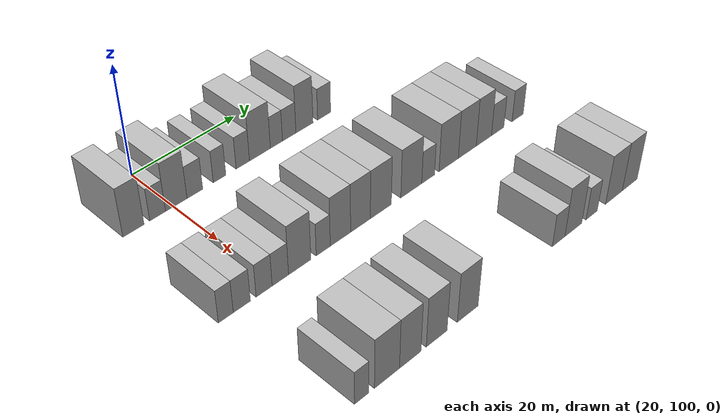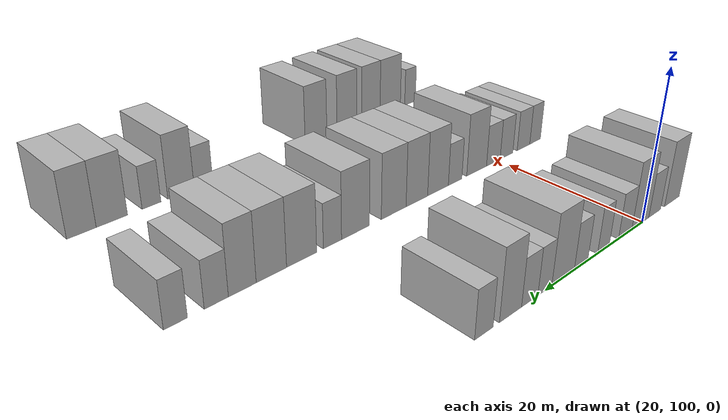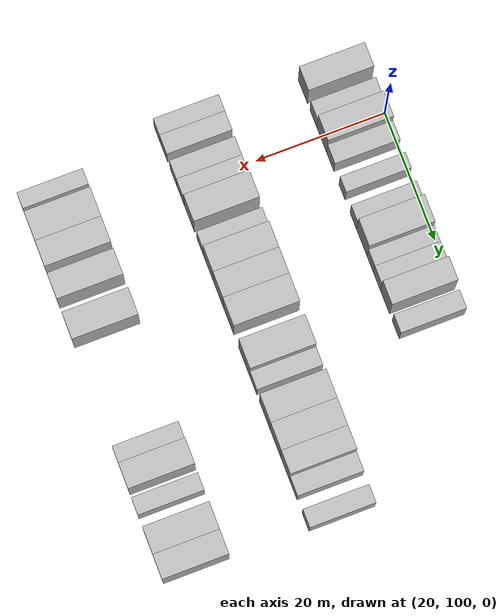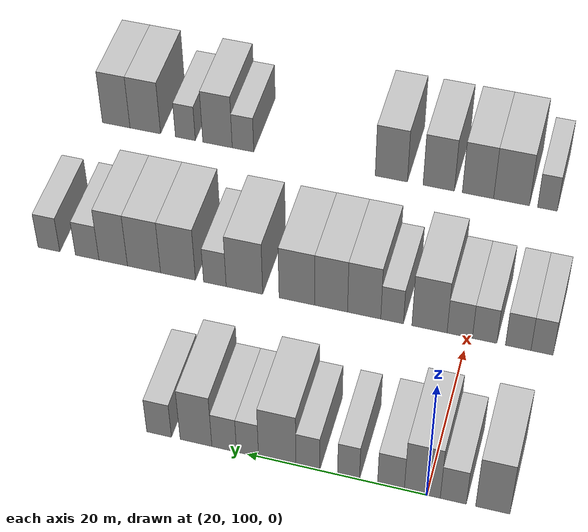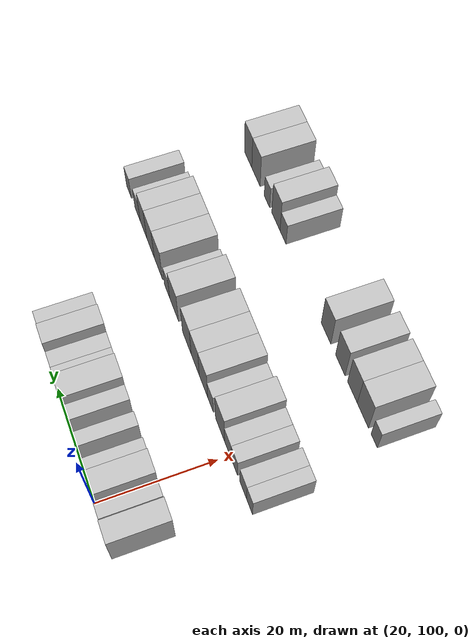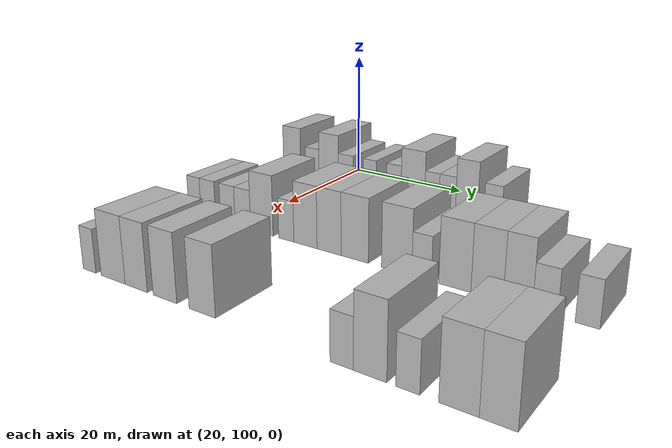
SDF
<sdf version="1.6">
 <world name="default">
  <model name="building_89">
   <static>1</static>
   <pose>25.0000 92.8309 0 0.000000 0.000000 0.000000</pose>
   <link name="link">
    <pose>0 0 4.50 0 0 0</pose>
    <collision name="collision"><geometry><box><size>10.0000 3.7143 9.0000</size></box></geometry></collision>
    <visual name="visual">
     <cast_shadows>0</cast_shadows>
     <geometry><box><size>10.0000 3.7143 9.0000</size></box></geometry>
     <material>
      <script>
       <uri>model://HANNAS_wall/materials/scripts</uri>
       <uri>model://HANNAS_wall/materials/textures</uri>
       <name>vrc/HANNAS_wall</name>
      </script>
     </material>
    </visual>
   </link>
  </model>
  <model name="building_90">
   <static>1</static>
   <pose>25.0000 97.1097 0 0.000000 0.000000 0.000000</pose>
   <link name="link">
    <pose>0 0 3.00 0 0 0</pose>
    <collision name="collision"><geometry><box><size>10.0000 2.8431 6.0000</size></box></geometry></collision>
    <visual name="visual">
     <cast_shadows>0</cast_shadows>
     <geometry><box><size>10.0000 2.8431 6.0000</size></box></geometry>
     <material>
      <script>
       <uri>model://HANNAS_wall/materials/scripts</uri>
       <uri>model://HANNAS_wall/materials/textures</uri>
       <name>vrc/HANNAS_wall</name>
      </script>
     </material>
    </visual>
   </link>
  </model>
  <model name="building_91">
   <static>1</static>
   <pose>25.0000 100.5039 0 0.000000 0.000000 0.000000</pose>
   <link name="link">
    <pose>0 0 4.50 0 0 0</pose>
    <collision name="collision"><geometry><box><size>10.0000 3.9452 9.0000</size></box></geometry></collision>
    <visual name="visual">
     <cast_shadows>0</cast_shadows>
     <geometry><box><size>10.0000 3.9452 9.0000</size></box></geometry>
     <material>
      <script>
       <uri>model://HANNAS_wall/materials/scripts</uri>
       <uri>model://HANNAS_wall/materials/textures</uri>
       <name>vrc/HANNAS_wall</name>
      </script>
     </material>
    </visual>
   </link>
  </model>
  <model name="building_92">
   <static>1</static>
   <pose>25.0000 103.9523 0 0.000000 0.000000 0.000000</pose>
   <link name="link">
    <pose>0 0 3.00 0 0 0</pose>
    <collision name="collision"><geometry><box><size>10.0000 2.9517 6.0000</size></box></geometry></collision>
    <visual name="visual">
     <cast_shadows>0</cast_shadows>
     <geometry><box><size>10.0000 2.9517 6.0000</size></box></geometry>
     <material>
      <script>
       <uri>model://HANNAS_wall/materials/scripts</uri>
       <uri>model://HANNAS_wall/materials/textures</uri>
       <name>vrc/HANNAS_wall</name>
      </script>
     </material>
    </visual>
   </link>
  </model>
  <model name="building_93">
   <static>1</static>
   <pose>25.0000 108.6472 0 0.000000 0.000000 0.000000</pose>
   <link name="link">
    <pose>0 0 3.00 0 0 0</pose>
    <collision name="collision"><geometry><box><size>10.0000 2.4379 6.0000</size></box></geometry></collision>
    <visual name="visual">
     <cast_shadows>0</cast_shadows>
     <geometry><box><size>10.0000 2.4379 6.0000</size></box></geometry>
     <material>
      <script>
       <uri>model://HANNAS_wall/materials/scripts</uri>
       <uri>model://HANNAS_wall/materials/textures</uri>
       <name>vrc/HANNAS_wall</name>
      </script>
     </material>
    </visual>
   </link>
  </model>
  <model name="building_94">
   <static>1</static>
   <pose>25.0000 113.1927 0 0.000000 0.000000 0.000000</pose>
   <link name="link">
    <pose>0 0 3.00 0 0 0</pose>
    <collision name="collision"><geometry><box><size>10.0000 2.6532 6.0000</size></box></geometry></collision>
    <visual name="visual">
     <cast_shadows>0</cast_shadows>
     <geometry><box><size>10.0000 2.6532 6.0000</size></box></geometry>
     <material>
      <script>
       <uri>model://HANNAS_wall/materials/scripts</uri>
       <uri>model://HANNAS_wall/materials/textures</uri>
       <name>vrc/HANNAS_wall</name>
      </script>
     </material>
    </visual>
   </link>
  </model>
  <model name="building_95">
   <static>1</static>
   <pose>25.0000 116.6332 0 0.000000 0.000000 0.000000</pose>
   <link name="link">
    <pose>0 0 4.50 0 0 0</pose>
    <collision name="collision"><geometry><box><size>10.0000 4.2278 9.0000</size></box></geometry></collision>
    <visual name="visual">
     <cast_shadows>0</cast_shadows>
     <geometry><box><size>10.0000 4.2278 9.0000</size></box></geometry>
     <material>
      <script>
       <uri>model://HANNAS_wall/materials/scripts</uri>
       <uri>model://HANNAS_wall/materials/textures</uri>
       <name>vrc/HANNAS_wall</name>
      </script>
     </material>
    </visual>
   </link>
  </model>
  <model name="building_96">
   <static>1</static>
   <pose>25.0000 119.9988 0 0.000000 0.000000 0.000000</pose>
   <link name="link">
    <pose>0 0 3.00 0 0 0</pose>
    <collision name="collision"><geometry><box><size>10.0000 2.5034 6.0000</size></box></geometry></collision>
    <visual name="visual">
     <cast_shadows>0</cast_shadows>
     <geometry><box><size>10.0000 2.5034 6.0000</size></box></geometry>
     <material>
      <script>
       <uri>model://HANNAS_wall/materials/scripts</uri>
       <uri>model://HANNAS_wall/materials/textures</uri>
       <name>vrc/HANNAS_wall</name>
      </script>
     </material>
    </visual>
   </link>
  </model>
  <model name="building_97">
   <static>1</static>
   <pose>25.0000 122.6572 0 0.000000 0.000000 0.000000</pose>
   <link name="link">
    <pose>0 0 3.00 0 0 0</pose>
    <collision name="collision"><geometry><box><size>10.0000 2.8134 6.0000</size></box></geometry></collision>
    <visual name="visual">
     <cast_shadows>0</cast_shadows>
     <geometry><box><size>10.0000 2.8134 6.0000</size></box></geometry>
     <material>
      <script>
       <uri>model://HANNAS_wall/materials/scripts</uri>
       <uri>model://HANNAS_wall/materials/textures</uri>
       <name>vrc/HANNAS_wall</name>
      </script>
     </material>
    </visual>
   </link>
  </model>
  <model name="building_98">
   <static>1</static>
   <pose>25.0000 125.8864 0 0.000000 0.000000 0.000000</pose>
   <link name="link">
    <pose>0 0 4.50 0 0 0</pose>
    <collision name="collision"><geometry><box><size>10.0000 3.6449 9.0000</size></box></geometry></collision>
    <visual name="visual">
     <cast_shadows>0</cast_shadows>
     <geometry><box><size>10.0000 3.6449 9.0000</size></box></geometry>
     <material>
      <script>
       <uri>model://HANNAS_wall/materials/scripts</uri>
       <uri>model://HANNAS_wall/materials/textures</uri>
       <name>vrc/HANNAS_wall</name>
      </script>
     </material>
    </visual>
   </link>
  </model>
  <model name="building_99">
   <static>1</static>
   <pose>25.0000 130.1384 0 0.000000 0.000000 0.000000</pose>
   <link name="link">
    <pose>0 0 3.00 0 0 0</pose>
    <collision name="collision"><geometry><box><size>10.0000 2.8591 6.0000</size></box></geometry></collision>
    <visual name="visual">
     <cast_shadows>0</cast_shadows>
     <geometry><box><size>10.0000 2.8591 6.0000</size></box></geometry>
     <material>
      <script>
       <uri>model://HANNAS_wall/materials/scripts</uri>
       <uri>model://HANNAS_wall/materials/textures</uri>
       <name>vrc/HANNAS_wall</name>
      </script>
     </material>
    </visual>
   </link>
  </model>
  <model name="building_208">
   <static>1</static>
   <pose>47.0000 91.3387 0 0.000000 0.000000 0.000000</pose>
   <link name="link">
    <pose>0 0 3.00 0 0 0</pose>
    <collision name="collision"><geometry><box><size>10.0000 2.5619 6.0000</size></box></geometry></collision>
    <visual name="visual">
     <cast_shadows>0</cast_shadows>
     <geometry><box><size>10.0000 2.5619 6.0000</size></box></geometry>
     <material>
      <script>
       <uri>model://HANNAS_wall/materials/scripts</uri>
       <uri>model://HANNAS_wall/materials/textures</uri>
       <name>vrc/HANNAS_wall</name>
      </script>
     </material>
    </visual>
   </link>
  </model>
  <model name="building_209">
   <static>1</static>
   <pose>47.0000 94.1070 0 0.000000 0.000000 0.000000</pose>
   <link name="link">
    <pose>0 0 3.00 0 0 0</pose>
    <collision name="collision"><geometry><box><size>10.0000 2.9747 6.0000</size></box></geometry></collision>
    <visual name="visual">
     <cast_shadows>0</cast_shadows>
     <geometry><box><size>10.0000 2.9747 6.0000</size></box></geometry>
     <material>
      <script>
       <uri>model://HANNAS_wall/materials/scripts</uri>
       <uri>model://HANNAS_wall/materials/textures</uri>
       <name>vrc/HANNAS_wall</name>
      </script>
     </material>
    </visual>
   </link>
  </model>
  <model name="building_210">
   <static>1</static>
   <pose>47.0000 98.0271 0 0.000000 0.000000 0.000000</pose>
   <link name="link">
    <pose>0 0 3.00 0 0 0</pose>
    <collision name="collision"><geometry><box><size>10.0000 2.8655 6.0000</size></box></geometry></collision>
    <visual name="visual">
     <cast_shadows>0</cast_shadows>
     <geometry><box><size>10.0000 2.8655 6.0000</size></box></geometry>
     <material>
      <script>
       <uri>model://HANNAS_wall/materials/scripts</uri>
       <uri>model://HANNAS_wall/materials/textures</uri>
       <name>vrc/HANNAS_wall</name>
      </script>
     </material>
    </visual>
   </link>
  </model>
  <model name="building_211">
   <static>1</static>
   <pose>47.0000 100.9526 0 0.000000 0.000000 0.000000</pose>
   <link name="link">
    <pose>0 0 3.00 0 0 0</pose>
    <collision name="collision"><geometry><box><size>10.0000 2.9855 6.0000</size></box></geometry></collision>
    <visual name="visual">
     <cast_shadows>0</cast_shadows>
     <geometry><box><size>10.0000 2.9855 6.0000</size></box></geometry>
     <material>
      <script>
       <uri>model://HANNAS_wall/materials/scripts</uri>
       <uri>model://HANNAS_wall/materials/textures</uri>
       <name>vrc/HANNAS_wall</name>
      </script>
     </material>
    </visual>
   </link>
  </model>
  <model name="building_212">
   <static>1</static>
   <pose>47.0000 104.5278 0 0.000000 0.000000 0.000000</pose>
   <link name="link">
    <pose>0 0 4.50 0 0 0</pose>
    <collision name="collision"><geometry><box><size>10.0000 4.1650 9.0000</size></box></geometry></collision>
    <visual name="visual">
     <cast_shadows>0</cast_shadows>
     <geometry><box><size>10.0000 4.1650 9.0000</size></box></geometry>
     <material>
      <script>
       <uri>model://HANNAS_wall/materials/scripts</uri>
       <uri>model://HANNAS_wall/materials/textures</uri>
       <name>vrc/HANNAS_wall</name>
      </script>
     </material>
    </visual>
   </link>
  </model>
  <model name="building_213">
   <static>1</static>
   <pose>47.0000 108.9631 0 0.000000 0.000000 0.000000</pose>
   <link name="link">
    <pose>0 0 3.00 0 0 0</pose>
    <collision name="collision"><geometry><box><size>10.0000 2.7056 6.0000</size></box></geometry></collision>
    <visual name="visual">
     <cast_shadows>0</cast_shadows>
     <geometry><box><size>10.0000 2.7056 6.0000</size></box></geometry>
     <material>
      <script>
       <uri>model://HANNAS_wall/materials/scripts</uri>
       <uri>model://HANNAS_wall/materials/textures</uri>
       <name>vrc/HANNAS_wall</name>
      </script>
     </material>
    </visual>
   </link>
  </model>
  <model name="building_214">
   <static>1</static>
   <pose>47.0000 112.3114 0 0.000000 0.000000 0.000000</pose>
   <link name="link">
    <pose>0 0 4.50 0 0 0</pose>
    <collision name="collision"><geometry><box><size>10.0000 3.9910 9.0000</size></box></geometry></collision>
    <visual name="visual">
     <cast_shadows>0</cast_shadows>
     <geometry><box><size>10.0000 3.9910 9.0000</size></box></geometry>
     <material>
      <script>
       <uri>model://HANNAS_wall/materials/scripts</uri>
       <uri>model://HANNAS_wall/materials/textures</uri>
       <name>vrc/HANNAS_wall</name>
      </script>
     </material>
    </visual>
   </link>
  </model>
  <model name="building_215">
   <static>1</static>
   <pose>47.0000 116.2923 0 0.000000 0.000000 0.000000</pose>
   <link name="link">
    <pose>0 0 4.50 0 0 0</pose>
    <collision name="collision"><geometry><box><size>10.0000 3.9710 9.0000</size></box></geometry></collision>
    <visual name="visual">
     <cast_shadows>0</cast_shadows>
     <geometry><box><size>10.0000 3.9710 9.0000</size></box></geometry>
     <material>
      <script>
       <uri>model://HANNAS_wall/materials/scripts</uri>
       <uri>model://HANNAS_wall/materials/textures</uri>
       <name>vrc/HANNAS_wall</name>
      </script>
     </material>
    </visual>
   </link>
  </model>
  <model name="building_216">
   <static>1</static>
   <pose>47.0000 120.4448 0 0.000000 0.000000 0.000000</pose>
   <link name="link">
    <pose>0 0 4.50 0 0 0</pose>
    <collision name="collision"><geometry><box><size>10.0000 4.3340 9.0000</size></box></geometry></collision>
    <visual name="visual">
     <cast_shadows>0</cast_shadows>
     <geometry><box><size>10.0000 4.3340 9.0000</size></box></geometry>
     <material>
      <script>
       <uri>model://HANNAS_wall/materials/scripts</uri>
       <uri>model://HANNAS_wall/materials/textures</uri>
       <name>vrc/HANNAS_wall</name>
      </script>
     </material>
    </visual>
   </link>
  </model>
  <model name="building_217">
   <static>1</static>
   <pose>47.0000 126.8617 0 0.000000 0.000000 0.000000</pose>
   <link name="link">
    <pose>0 0 4.50 0 0 0</pose>
    <collision name="collision"><geometry><box><size>10.0000 4.4997 9.0000</size></box></geometry></collision>
    <visual name="visual">
     <cast_shadows>0</cast_shadows>
     <geometry><box><size>10.0000 4.4997 9.0000</size></box></geometry>
     <material>
      <script>
       <uri>model://HANNAS_wall/materials/scripts</uri>
       <uri>model://HANNAS_wall/materials/textures</uri>
       <name>vrc/HANNAS_wall</name>
      </script>
     </material>
    </visual>
   </link>
  </model>
  <model name="building_218">
   <static>1</static>
   <pose>47.0000 130.5123 0 0.000000 0.000000 0.000000</pose>
   <link name="link">
    <pose>0 0 3.00 0 0 0</pose>
    <collision name="collision"><geometry><box><size>10.0000 2.8013 6.0000</size></box></geometry></collision>
    <visual name="visual">
     <cast_shadows>0</cast_shadows>
     <geometry><box><size>10.0000 2.8013 6.0000</size></box></geometry>
     <material>
      <script>
       <uri>model://HANNAS_wall/materials/scripts</uri>
       <uri>model://HANNAS_wall/materials/textures</uri>
       <name>vrc/HANNAS_wall</name>
      </script>
     </material>
    </visual>
   </link>
  </model>
  <model name="building_219">
   <static>1</static>
   <pose>47.0000 135.0949 0 0.000000 0.000000 0.000000</pose>
   <link name="link">
    <pose>0 0 4.50 0 0 0</pose>
    <collision name="collision"><geometry><box><size>10.0000 4.3639 9.0000</size></box></geometry></collision>
    <visual name="visual">
     <cast_shadows>0</cast_shadows>
     <geometry><box><size>10.0000 4.3639 9.0000</size></box></geometry>
     <material>
      <script>
       <uri>model://HANNAS_wall/materials/scripts</uri>
       <uri>model://HANNAS_wall/materials/textures</uri>
       <name>vrc/HANNAS_wall</name>
      </script>
     </material>
    </visual>
   </link>
  </model>
  <model name="building_220">
   <static>1</static>
   <pose>47.0000 139.3585 0 0.000000 0.000000 0.000000</pose>
   <link name="link">
    <pose>0 0 4.50 0 0 0</pose>
    <collision name="collision"><geometry><box><size>10.0000 4.1634 9.0000</size></box></geometry></collision>
    <visual name="visual">
     <cast_shadows>0</cast_shadows>
     <geometry><box><size>10.0000 4.1634 9.0000</size></box></geometry>
     <material>
      <script>
       <uri>model://HANNAS_wall/materials/scripts</uri>
       <uri>model://HANNAS_wall/materials/textures</uri>
       <name>vrc/HANNAS_wall</name>
      </script>
     </material>
    </visual>
   </link>
  </model>
  <model name="building_221">
   <static>1</static>
   <pose>47.0000 143.2440 0 0.000000 0.000000 0.000000</pose>
   <link name="link">
    <pose>0 0 4.50 0 0 0</pose>
    <collision name="collision"><geometry><box><size>10.0000 3.6075 9.0000</size></box></geometry></collision>
    <visual name="visual">
     <cast_shadows>0</cast_shadows>
     <geometry><box><size>10.0000 3.6075 9.0000</size></box></geometry>
     <material>
      <script>
       <uri>model://HANNAS_wall/materials/scripts</uri>
       <uri>model://HANNAS_wall/materials/textures</uri>
       <name>vrc/HANNAS_wall</name>
      </script>
     </material>
    </visual>
   </link>
  </model>
  <model name="building_222">
   <static>1</static>
   <pose>47.0000 146.5441 0 0.000000 0.000000 0.000000</pose>
   <link name="link">
    <pose>0 0 3.00 0 0 0</pose>
    <collision name="collision"><geometry><box><size>10.0000 2.9927 6.0000</size></box></geometry></collision>
    <visual name="visual">
     <cast_shadows>0</cast_shadows>
     <geometry><box><size>10.0000 2.9927 6.0000</size></box></geometry>
     <material>
      <script>
       <uri>model://HANNAS_wall/materials/scripts</uri>
       <uri>model://HANNAS_wall/materials/textures</uri>
       <name>vrc/HANNAS_wall</name>
      </script>
     </material>
    </visual>
   </link>
  </model>
  <model name="building_223">
   <static>1</static>
   <pose>47.0000 151.4304 0 0.000000 0.000000 0.000000</pose>
   <link name="link">
    <pose>0 0 3.00 0 0 0</pose>
    <collision name="collision"><geometry><box><size>10.0000 2.7799 6.0000</size></box></geometry></collision>
    <visual name="visual">
     <cast_shadows>0</cast_shadows>
     <geometry><box><size>10.0000 2.7799 6.0000</size></box></geometry>
     <material>
      <script>
       <uri>model://HANNAS_wall/materials/scripts</uri>
       <uri>model://HANNAS_wall/materials/textures</uri>
       <name>vrc/HANNAS_wall</name>
      </script>
     </material>
    </visual>
   </link>
  </model>
  <model name="building_338">
   <static>1</static>
   <pose>69.0000 94.4805 0 0.000000 0.000000 0.000000</pose>
   <link name="link">
    <pose>0 0 3.00 0 0 0</pose>
    <collision name="collision"><geometry><box><size>10.0000 2.4624 6.0000</size></box></geometry></collision>
    <visual name="visual">
     <cast_shadows>0</cast_shadows>
     <geometry><box><size>10.0000 2.4624 6.0000</size></box></geometry>
     <material>
      <script>
       <uri>model://HANNAS_wall/materials/scripts</uri>
       <uri>model://HANNAS_wall/materials/textures</uri>
       <name>vrc/HANNAS_wall</name>
      </script>
     </material>
    </visual>
   </link>
  </model>
  <model name="building_339">
   <static>1</static>
   <pose>69.0000 98.9615 0 0.000000 0.000000 0.000000</pose>
   <link name="link">
    <pose>0 0 4.50 0 0 0</pose>
    <collision name="collision"><geometry><box><size>10.0000 4.4996 9.0000</size></box></geometry></collision>
    <visual name="visual">
     <cast_shadows>0</cast_shadows>
     <geometry><box><size>10.0000 4.4996 9.0000</size></box></geometry>
     <material>
      <script>
       <uri>model://HANNAS_wall/materials/scripts</uri>
       <uri>model://HANNAS_wall/materials/textures</uri>
       <name>vrc/HANNAS_wall</name>
      </script>
     </material>
    </visual>
   </link>
  </model>
  <model name="building_340">
   <static>1</static>
   <pose>69.0000 103.1889 0 0.000000 0.000000 0.000000</pose>
   <link name="link">
    <pose>0 0 4.50 0 0 0</pose>
    <collision name="collision"><geometry><box><size>10.0000 3.9553 9.0000</size></box></geometry></collision>
    <visual name="visual">
     <cast_shadows>0</cast_shadows>
     <geometry><box><size>10.0000 3.9553 9.0000</size></box></geometry>
     <material>
      <script>
       <uri>model://HANNAS_wall/materials/scripts</uri>
       <uri>model://HANNAS_wall/materials/textures</uri>
       <name>vrc/HANNAS_wall</name>
      </script>
     </material>
    </visual>
   </link>
  </model>
  <model name="building_341">
   <static>1</static>
   <pose>69.0000 108.1580 0 0.000000 0.000000 0.000000</pose>
   <link name="link">
    <pose>0 0 4.50 0 0 0</pose>
    <collision name="collision"><geometry><box><size>10.0000 3.9827 9.0000</size></box></geometry></collision>
    <visual name="visual">
     <cast_shadows>0</cast_shadows>
     <geometry><box><size>10.0000 3.9827 9.0000</size></box></geometry>
     <material>
      <script>
       <uri>model://HANNAS_wall/materials/scripts</uri>
       <uri>model://HANNAS_wall/materials/textures</uri>
       <name>vrc/HANNAS_wall</name>
      </script>
     </material>
    </visual>
   </link>
  </model>
  <model name="building_342">
   <static>1</static>
   <pose>69.0000 114.2160 0 0.000000 0.000000 0.000000</pose>
   <link name="link">
    <pose>0 0 4.50 0 0 0</pose>
    <collision name="collision"><geometry><box><size>10.0000 4.1332 9.0000</size></box></geometry></collision>
    <visual name="visual">
     <cast_shadows>0</cast_shadows>
     <geometry><box><size>10.0000 4.1332 9.0000</size></box></geometry>
     <material>
      <script>
       <uri>model://HANNAS_wall/materials/scripts</uri>
       <uri>model://HANNAS_wall/materials/textures</uri>
       <name>vrc/HANNAS_wall</name>
      </script>
     </material>
    </visual>
   </link>
  </model>
  <model name="building_343">
   <static>1</static>
   <pose>69.0000 133.5625 0 0.000000 0.000000 0.000000</pose>
   <link name="link">
    <pose>0 0 3.00 0 0 0</pose>
    <collision name="collision"><geometry><box><size>10.0000 2.8533 6.0000</size></box></geometry></collision>
    <visual name="visual">
     <cast_shadows>0</cast_shadows>
     <geometry><box><size>10.0000 2.8533 6.0000</size></box></geometry>
     <material>
      <script>
       <uri>model://HANNAS_wall/materials/scripts</uri>
       <uri>model://HANNAS_wall/materials/textures</uri>
       <name>vrc/HANNAS_wall</name>
      </script>
     </material>
    </visual>
   </link>
  </model>
  <model name="building_344">
   <static>1</static>
   <pose>69.0000 136.9486 0 0.000000 0.000000 0.000000</pose>
   <link name="link">
    <pose>0 0 4.50 0 0 0</pose>
    <collision name="collision"><geometry><box><size>10.0000 3.9189 9.0000</size></box></geometry></collision>
    <visual name="visual">
     <cast_shadows>0</cast_shadows>
     <geometry><box><size>10.0000 3.9189 9.0000</size></box></geometry>
     <material>
      <script>
       <uri>model://HANNAS_wall/materials/scripts</uri>
       <uri>model://HANNAS_wall/materials/textures</uri>
       <name>vrc/HANNAS_wall</name>
      </script>
     </material>
    </visual>
   </link>
  </model>
  <model name="building_345">
   <static>1</static>
   <pose>69.0000 141.2434 0 0.000000 0.000000 0.000000</pose>
   <link name="link">
    <pose>0 0 3.00 0 0 0</pose>
    <collision name="collision"><geometry><box><size>10.0000 2.6706 6.0000</size></box></geometry></collision>
    <visual name="visual">
     <cast_shadows>0</cast_shadows>
     <geometry><box><size>10.0000 2.6706 6.0000</size></box></geometry>
     <material>
      <script>
       <uri>model://HANNAS_wall/materials/scripts</uri>
       <uri>model://HANNAS_wall/materials/textures</uri>
       <name>vrc/HANNAS_wall</name>
      </script>
     </material>
    </visual>
   </link>
  </model>
  <model name="building_346">
   <static>1</static>
   <pose>69.0000 146.6484 0 0.000000 0.000000 0.000000</pose>
   <link name="link">
    <pose>0 0 4.50 0 0 0</pose>
    <collision name="collision"><geometry><box><size>10.0000 4.1394 9.0000</size></box></geometry></collision>
    <visual name="visual">
     <cast_shadows>0</cast_shadows>
     <geometry><box><size>10.0000 4.1394 9.0000</size></box></geometry>
     <material>
      <script>
       <uri>model://HANNAS_wall/materials/scripts</uri>
       <uri>model://HANNAS_wall/materials/textures</uri>
       <name>vrc/HANNAS_wall</name>
      </script>
     </material>
    </visual>
   </link>
  </model>
  <model name="building_347">
   <static>1</static>
   <pose>69.0000 150.5897 0 0.000000 0.000000 0.000000</pose>
   <link name="link">
    <pose>0 0 4.50 0 0 0</pose>
    <collision name="collision"><geometry><box><size>10.0000 3.7432 9.0000</size></box></geometry></collision>
    <visual name="visual">
     <cast_shadows>0</cast_shadows>
     <geometry><box><size>10.0000 3.7432 9.0000</size></box></geometry>
     <material>
      <script>
       <uri>model://HANNAS_wall/materials/scripts</uri>
       <uri>model://HANNAS_wall/materials/textures</uri>
       <name>vrc/HANNAS_wall</name>
      </script>
     </material>
    </visual>
   </link>
  </model>
 </world>
</sdf>
